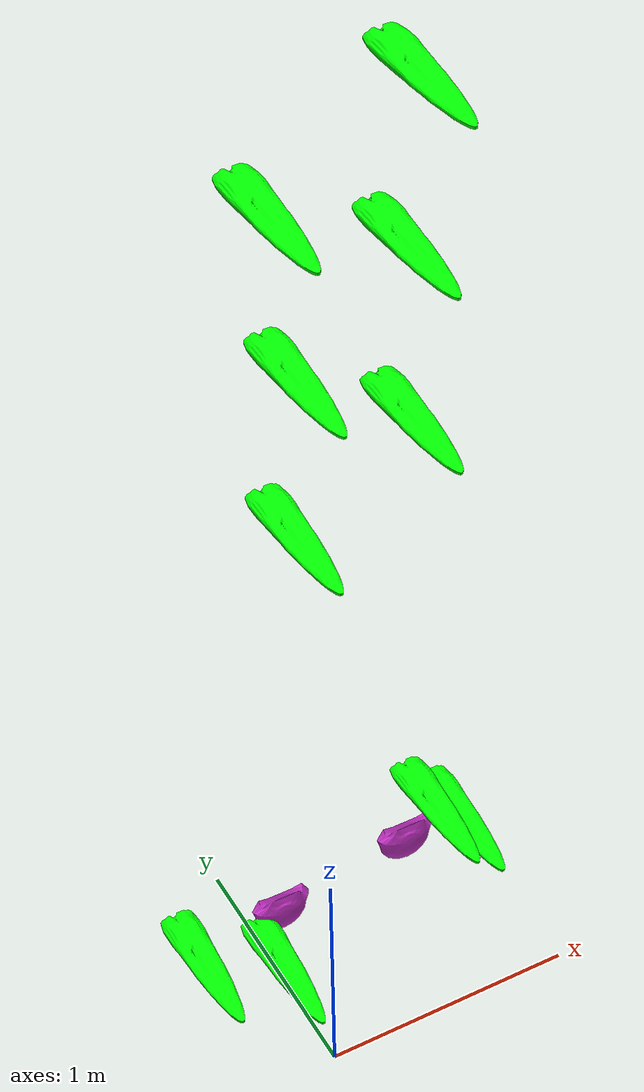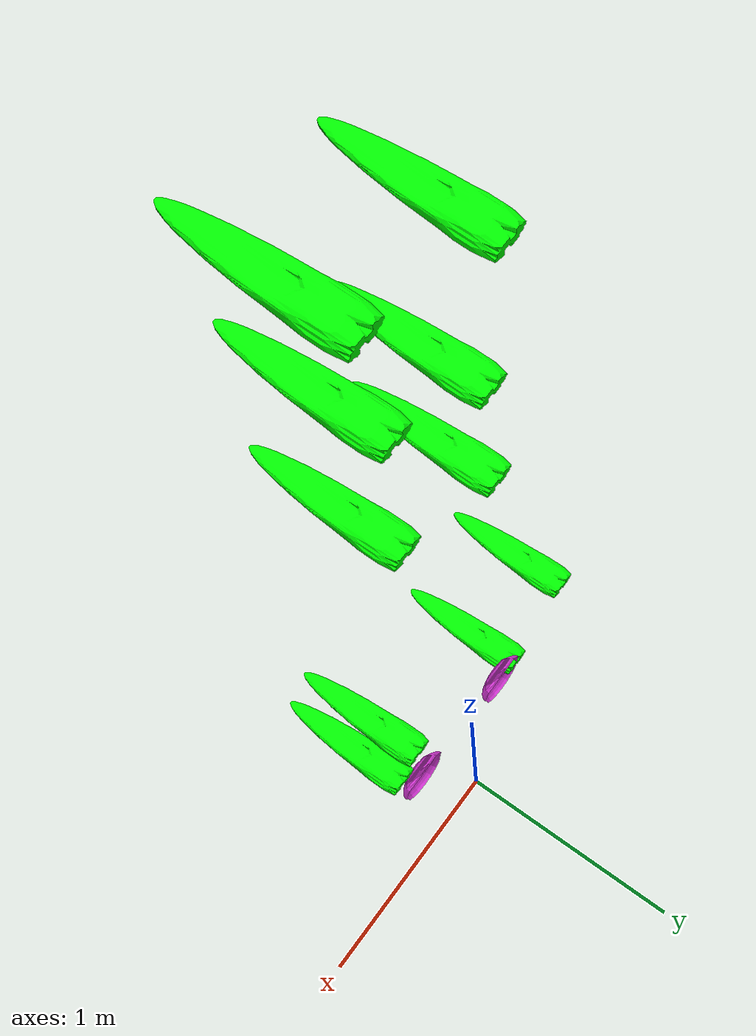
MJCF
<mujoco>
  <compiler angle="radian" autolimits="true"/>
  <worldbody>
    <body name="h1" pos="-0.3 0.0 1.0" quat="0.70710678 0.70710678 0.0 0.0">
        <geom type="mesh" name="h1 geom" mesh="Jug1Center" rgba="0 1 0 1" />
    </body>
    <body name="h2" pos="0.3 0.0 1.5" quat="0.70710678 0.70710678 0.0 0.0">
        <geom type="mesh" name="h2 geom" mesh="Jug1Center" rgba="0 1 0 1" />
    </body>
    <body name="h3" pos="-0.2 0.0 3.0" quat="0.70710678 0.70710678 0.0 0.0">
        <geom type="mesh" name="h3 geom" mesh="Jug1Center" rgba="0 1 0 1" />
    </body>
    <body name="h4" pos="0.2 0.0 3.30" quat="0.70710678 0.70710678 0.0 0.0">
        <geom type="mesh" name="h4 geom" mesh="Jug1Center" rgba="0 1 0 1" />
    </body>
    <body name="h5" pos="-0.18 0.0 3.60" quat="0.70710678 0.70710678 0.0 0.0">
        <geom type="mesh" name="h5 geom" mesh="Jug1Center" rgba="0 1 0 1" />
    </body>
    <body name="h6" pos="0.18 0.0 3.95" quat="0.70710678 0.70710678 0.0 0.0">
        <geom type="mesh" name="h6 geom" mesh="Jug1Center" rgba="0 1 0 1" />
    </body>
    <body name="h7" pos="-0.25 0.0 4.2" quat="0.70710678 0.70710678 0.0 0.0">
        <geom type="mesh" name="h7 geom" mesh="Jug1Center" rgba="0 1 0 1" />
    </body>
    <body name="h8" pos="0.22 0.0 4.5" quat="0.70710678 0.70710678 0.0 0.0">
        <geom type="mesh" name="h8 geom" mesh="Jug1Center" rgba="0 1 0 1" />
    </body>

    <body name="Jug1Center_3" pos="-0.6 0.0 1.2" quat="0.70710678 0.70710678 0.0 0.0">
        <geom type="mesh" name="Jug1Center_3 geom" mesh="Jug1Center" rgba="0 1 0 1" />
    </body>
    <body name="Jug1Center_4" pos="0.4 0.0 1.4" quat="0.70710678 0.70710678 0.0 0.0">
        <geom type="mesh" name="Jug1Center_4 geom" mesh="Jug1Center" rgba="0 1 0 1" />
    </body>
    <body name="Jug2Center_5" pos="0.3 0.0 1.2" quat="0.70710678 0.70710678 0.0 0.0">
        <geom type="mesh" name="Jug2Center_5 geom" mesh="Jug2Center" rgba="0.8 0.2 0.8 1" />
    </body>
    <body name="Jug2Center_6" pos="-0.2 0.0 1.1" quat="0.70710678 0.70710678 0.0 0.0">
        <geom type="mesh" name="Jug2Center_6 geom" mesh="Jug2Center" rgba="0.8 0.2 0.8 1" />
    </body>
  </worldbody>
  <asset>
    <mesh scale="1 1 10" name="Jug1Center" file="assets/Wall/jug1_center.obj"/>
    <mesh name="Jug2Center" file="assets/Wall/jug3_center.obj"/>
  </asset>
</mujoco>
